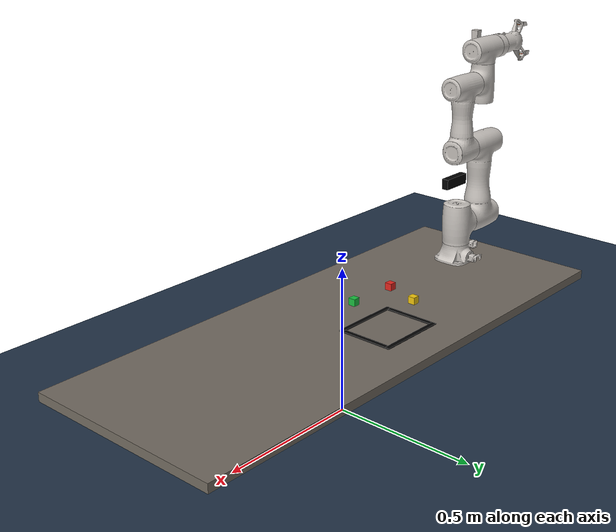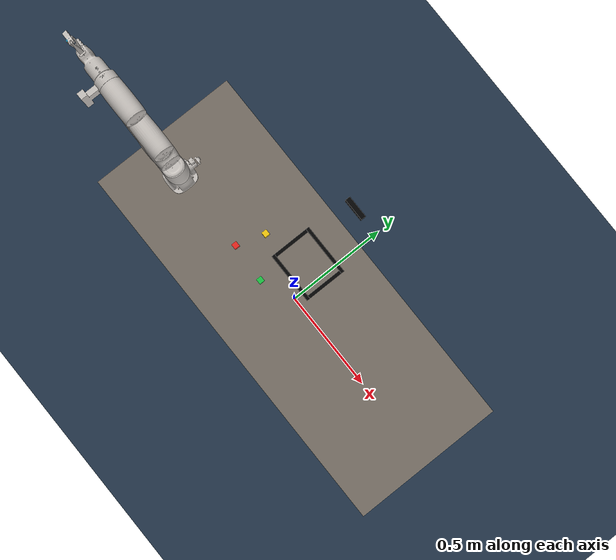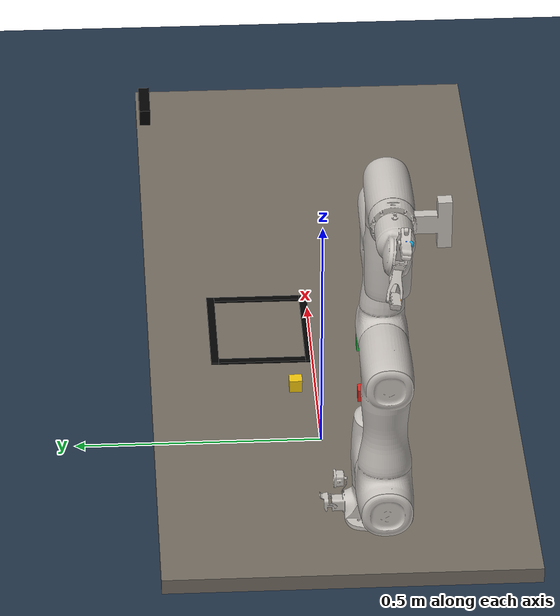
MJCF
<?xml version='1.0' encoding='utf-8'?>
<mujoco model="更新的夹爪（一半旋转）v1.0.SLDASM">
  <compiler angle="radian" autolimits="true" />
  <default>
    <default class="visual_only">
      <geom contype="0" conaffinity="0" group="2" />
    </default>
    <default class="no_visual_collision">
      <geom contype="1" conaffinity="1" group="3" rgba="0 1 0 0" friction="1.0 0.05 0.005" condim="4" margin="0.001" solref="0.004 1" solimp="0.95 0.99 0.001" />
    </default>
    <default class="visual_collision">
      <geom contype="1" conaffinity="1" group="2" />
    </default>
  </default>
  <asset>
    <mesh name="base_link" content_type="model/stl" file="meshes/base_link.STL" />
    <mesh name="Link1" content_type="model/stl" file="meshes/Link1.STL" />
    <mesh name="Link2" content_type="model/stl" file="meshes/Link2.STL" />
    <mesh name="Link3" content_type="model/stl" file="meshes/Link3.STL" />
    <mesh name="Link4" content_type="model/stl" file="meshes/Link4.STL" />
    <mesh name="Link5" content_type="model/stl" file="meshes/Link5.STL" />
    <mesh name="Link6" content_type="model/stl" file="meshes/Link6.STL" />
    <mesh name="gripper_base" content_type="model/stl" file="meshes/gripper_base.STL" />
    <mesh name="Left_Link1" content_type="model/stl" file="meshes/Left_Link1.STL" />
    <mesh name="Left_static1" content_type="model/stl" file="meshes/Left_static1.STL" />
    <mesh name="Left_link2" content_type="model/stl" file="meshes/Left_link2.STL" />
    <mesh name="Right_Link1" content_type="model/stl" file="meshes/Right_Link1.STL" />
    <mesh name="Right_static1" content_type="model/stl" file="meshes/Right_static1.STL" />
    <mesh name="Right_Link2" content_type="model/stl" file="meshes/Right_Link2.STL" />
    <texture name="blue_checker_floor" type="2d" builtin="checker" rgb1="0.18 0.28 0.38" rgb2="0.08 0.12 0.18" width="512" height="512" />
    <material name="blue_checker_floor_mat" texture="blue_checker_floor" texrepeat="40 40" reflectance="0.1" />
  </asset>
  <worldbody>
    <body name="cr3_base_mount" pos="-0.7 -0.06 0.31">
      <geom type="mesh" rgba="0.776471 0.756863 0.737255 1" mesh="base_link" class="visual_only" contype="0" conaffinity="0" group="2" />
      <body name="Link1" pos="7.69363e-05 0.000302534 0.065">
        <inertial pos="-0.00394441 3.66734e-05 0.073444" quat="0.947437 -0.00273951 -0.319921 0.00265176" mass="10.0956" diaginertia="0.0167604 0.0155946 0.0126575" />
        <joint name="J1" pos="0 0 0" axis="0 0 1" range="-6.28319 6.28319" actuatorfrcrange="-1800 1800" damping="12" frictionloss="1" ref="-1.5707963267948966" />
        <geom type="mesh" rgba="0.776471 0.756863 0.737255 1" mesh="Link1" class="visual_only" contype="0" conaffinity="0" group="2" />
        <body name="Link2" pos="-0.0590003 0 0.0698">
          <inertial pos="-0.0741752 -1.41283e-05 0.129233" quat="0.706494 -0.0232625 -0.02388 0.706933" mass="26.1839" diaginertia="0.048688 0.0445674 0.0346495" />
          <joint name="J2" pos="0 0 0" axis="-1 0 0" range="-3.22092 3.06227" actuatorfrcrange="-1800 1800" damping="16" frictionloss="1.2" ref="-0.07933394114940226" />
          <geom type="mesh" rgba="0.776471 0.756863 0.737255 1" mesh="Link2" class="visual_only" contype="0" conaffinity="0" group="2" />
          <body name="Link3" pos="-0.0036 0 0.274008">
            <inertial pos="0.0522018 1.21074e-06 0.121124" quat="0.706801 -0.0224151 -0.0224228 0.706702" mass="16.8666" diaginertia="0.156932 0.153574 0.0191618" />
            <joint name="J3" pos="0 0 0" axis="-1 0 0" range="-4.83456 1.44862" actuatorfrcrange="-1400 1400" damping="14" frictionloss="1" ref="-1.6929693744344996" />
            <geom type="mesh" rgba="0.776471 0.756863 0.737255 1" mesh="Link3" class="visual_only" contype="0" conaffinity="0" group="2" />
            <body name="Link4" pos="-0.0167 0 0.229991">
              <inertial pos="-0.0461257 1.2653e-06 -0.0034516" quat="0.973292 -8.16792e-06 -0.22957 4.69545e-05" mass="6.48534" diaginertia="0.00816577 0.00772983 0.00559607" />
              <joint name="J4" pos="0 0 0" axis="1 0 0" range="-3.00197 3.28122" actuatorfrcrange="-900 900" damping="8" frictionloss="0.6" ref="0.13962634015954636" />
              <geom type="mesh" rgba="0.776471 0.756863 0.737255 1" mesh="Link4" class="visual_only" contype="0" conaffinity="0" group="2" />
              <body name="Link5" pos="-0.0489999 0 0.0670001">
                <inertial pos="0.00333134 -2.03015e-07 0.0461311" quat="3.79243e-05 0.849701 3.47137e-05 0.527265" mass="6.49626" diaginertia="0.00819877 0.00776563 0.00560717" />
                <joint name="J5" pos="0 0 0" axis="0 0 -1" range="-4.72984 1.55334" actuatorfrcrange="-600 600" damping="5" frictionloss="0.4" ref="-1.5882496193148399" />
                <geom type="mesh" rgba="0.776471 0.756863 0.737255 1" mesh="Link5" class="visual_only" contype="0" conaffinity="0" group="2" />
                <body name="Link6" pos="-0.0673001 0 0.0488012">
                  <inertial pos="-0.0350774 -0.0623253 -0.00384368" quat="0.712399 0.573812 0.236016 0.327909" mass="1.35171" diaginertia="0.00171951 0.00146417 0.00086987" />
                  <joint name="J6" pos="0 0 0" axis="1 0 0" range="-6.28319 6.28319" actuatorfrcrange="-400 400" damping="4" frictionloss="0.3" ref="-4.834562028024293" />
                  <geom type="mesh" rgba="0.776471 0.756863 0.737255 1" mesh="Link6" class="visual_only" contype="0" conaffinity="0" group="2" />
                  <geom pos="-0.0477034 -1.4245e-05 8.99393e-05" quat="1 0 0 0" type="mesh" rgba="0.776471 0.756863 0.737255 1" mesh="gripper_base" class="visual_only" contype="0" conaffinity="0" group="2" />
                  <body name="Left_Link1" pos="-0.1296 0.00270665 0.0257403">
                    <inertial pos="-0.00700744 -0.0090106 0.00739792" quat="0.509039 -0.108563 -0.109622 0.846803" mass="0.0844596" diaginertia="3.23757e-05 3.0374e-05 6.0291e-06" />
                    <joint name="Left_joint1" pos="0 0 0" axis="0 -0.987688 -0.156434" range="-1.03 1.03" actuatorfrcrange="-12 12" damping="0.9" frictionloss="0.035" />
                    <geom type="mesh" rgba="0.776471 0.756863 0.737255 1" mesh="Left_Link1" class="visual_only" contype="0" conaffinity="0" group="2" />
                    <body name="Left_static1" pos="-0.0269314 -0.0137584 0.0440375">
                      <inertial pos="-0.0267318 0.00222482 -0.0141391" quat="-0.049582 0.630042 -0.0608023 0.772588" mass="0.0817983" diaginertia="1.76349e-05 1.63651e-05 2.98451e-06" />
                      <joint name="Left_static1_joint" pos="0 0 0" axis="0 -0.987688 -0.156434" range="-1.03 1.03" actuatorfrcrange="-12 12" damping="0.9" frictionloss="0.035" />
                      <geom type="mesh" rgba="0.776471 0.756863 0.737255 1" mesh="Left_static1" class="visual_only" contype="0" conaffinity="0" group="2" />
                      <geom name="left_static1_finger_collision" type="box" class="no_visual_collision" rgba="0 1 0 0" group="3" contype="1" conaffinity="1" friction="2.0 0.08 0.008" condim="4" margin="0.001" solref="0.004 1" solimp="0.95 0.99 0.001" pos="-0.035 0 -0.045" size="0.03 0.018 0.006" />
                      <site name="left_static_pin_site" type="sphere" pos="-0.02 0.00211 -0.01333" size="0.006" rgba="0.05 0.4 1 1" group="2" />
                      <site name="left_static_axis_site" type="sphere" pos="-0.02 -0.0057915067 -0.014581476" size="0.006" rgba="0.05 0.75 1 1" group="2" />
                    </body>
                    <geom name="Left_Link1_collision" type="capsule" class="no_visual_collision" rgba="0 1 0 0" group="3" contype="1" conaffinity="1" friction="1.0 0.05 0.005" condim="4" margin="0.001" solref="0.004 1" solimp="0.95 0.99 0.001" fromto="0 0 0 -0.023 -0.010 0.036" size="0.007" />
                  </body>
                  <body name="Left_link2" pos="-0.1496 0.00481852 0.0124065">
                    <inertial pos="-0.01073 -0.00946276 0.0169167" quat="0.961713 0.0756818 -0.26259 -0.0206679" mass="0.0467786" diaginertia="1.52576e-05 1.27468e-05 2.93383e-06" />
                    <joint name="Left_joint2" pos="0 0 0" axis="0 -0.987688 -0.156434" range="-1.03 1.03" actuatorfrcrange="-12 12" damping="0.9" frictionloss="0.035" />
                    <geom type="mesh" rgba="0.776471 0.756863 0.737255 1" mesh="Left_link2" class="visual_only" contype="0" conaffinity="0" group="2" />
                    <site name="left_link2_pin_site" type="sphere" pos="-0.02693 -0.01376 0.04404" size="0.006" rgba="1 0.15 0.05 1" group="2" />
                    <site name="left_link2_axis_site" type="sphere" pos="-0.02693 -0.021661507 0.042788524" size="0.006" rgba="1 0.55 0.05 1" group="2" />
                  </body>
                  <body name="Right_Link1" pos="-0.1296 0.0105284 -0.0236441">
                    <inertial pos="-0.00700744 -0.00422443 -0.00949414" quat="0.846803 0.109622 0.108563 0.509039" mass="0.0844596" diaginertia="3.23757e-05 3.0374e-05 6.0291e-06" />
                    <joint name="Right_joint" pos="0 0 0" axis="0 -0.987688 -0.156434" range="-1.03 1.03" actuatorfrcrange="-12 12" damping="0.9" frictionloss="0.035" />
                    <geom type="mesh" rgba="0.776471 0.756863 0.737255 1" mesh="Right_Link1" class="visual_only" contype="0" conaffinity="0" group="2" />
                    <body name="Right_static1" pos="-0.0269314 0.000523342 -0.0461337">
                      <inertial pos="-0.0267318 -0.00222483 0.0141391" quat="-0.0608025 0.772588 -0.0495822 0.630042" mass="0.0817983" diaginertia="1.76349e-05 1.63651e-05 2.98451e-06" />
                      <joint name="Right_static1_joint" pos="0 0 0" axis="0 0.987688 0.156434" range="-1.03 1.03" actuatorfrcrange="-12 12" damping="0.9" frictionloss="0.035" />
                      <geom type="mesh" rgba="0.776471 0.756863 0.737255 1" mesh="Right_static1" class="visual_only" contype="0" conaffinity="0" group="2" />
                      <geom name="right_static1_finger_collision" type="box" class="no_visual_collision" rgba="0 1 0 0" group="3" contype="1" conaffinity="1" friction="2.0 0.08 0.008" condim="4" margin="0.001" solref="0.004 1" solimp="0.95 0.99 0.001" pos="-0.035 0 0.045" size="0.03 0.018 0.006" />
                      <site name="right_static_pin_site" type="sphere" pos="-0.02 -0.00211 0.01333" size="0.006" rgba="0.05 0.4 1 1" group="2" />
                      <site name="right_static_axis_site" type="sphere" pos="-0.02 -0.010011507 0.012078524" size="0.006" rgba="0.05 0.75 1 1" group="2" />
                    </body>
                    <geom name="Right_Link1_collision" type="capsule" class="no_visual_collision" rgba="0 1 0 0" group="3" contype="1" conaffinity="1" friction="1.0 0.05 0.005" condim="4" margin="0.001" solref="0.004 1" solimp="0.95 0.99 0.001" fromto="0 0 0 -0.023 0.001 -0.036" size="0.007" />
                  </body>
                  <body name="Right_Link2" pos="-0.1496 0.00841651 -0.0103103">
                    <inertial pos="-0.01073 -0.00377226 -0.0190129" quat="0.961713 0.0756818 0.26259 0.0206679" mass="0.0467786" diaginertia="1.52576e-05 1.27468e-05 2.93383e-06" />
                    <joint name="Right_joint2" pos="0 0 0" axis="0 -0.987688 -0.156434" range="-1.03 1.03" actuatorfrcrange="-12 12" damping="0.9" frictionloss="0.035" />
                    <geom type="mesh" rgba="0.776471 0.756863 0.737255 1" mesh="Right_Link2" class="visual_only" contype="0" conaffinity="0" group="2" />
                    <site name="right_link2_pin_site" type="sphere" pos="-0.02693 0.00052 -0.04613" size="0.006" rgba="1 0.15 0.05 1" group="2" />
                    <site name="right_link2_axis_site" type="sphere" pos="-0.02693 -0.0073815067 -0.047381476" size="0.006" rgba="1 0.55 0.05 1" group="2" />
                  </body>
                  <geom name="Link6_or_gripper_base_collision" type="box" class="no_visual_collision" rgba="0 1 0 0" group="3" contype="1" conaffinity="1" friction="1.0 0.05 0.005" condim="4" margin="0.001" solref="0.004 1" solimp="0.95 0.99 0.001" pos="-0.110 0.004 0" size="0.038 0.035 0.038" />
                  <camera name="wrist" pos="-0.045 -0.09 0" xyaxes="0 1 0 0 0 1" fovy="70" />
                </body>
              </body>
            </body>
          </body>
        </body>
      </body>
      <geom name="base_collision" class="visual_only" type="cylinder" pos="0 0 0.035" size="0.09 0.04" rgba="0.2 0.2 0.2 0.15" group="3" contype="0" conaffinity="0" />
    </body>
    <light name="top_light" pos="0 -0.8 1.8" dir="0 0.4 -1" />
    <geom name="floor" type="plane" size="20 20 0.02" material="blue_checker_floor_mat" contype="1" conaffinity="1" friction="1.0 0.05 0.005" />
    <body name="table" pos="0.0 0.0 0.295">
      <geom name="table_top" class="visual_only" type="box" size="0.9 0.35 0.015" rgba="0.45 0.42 0.38 1" group="2" contype="0" conaffinity="0" />
      <geom name="table_top_collision" type="box" class="no_visual_collision" rgba="0 1 0 0" group="3" contype="1" conaffinity="1" friction="1.0 0.05 0.005" condim="4" margin="0.001" solref="0.002 1" solimp="0.98 0.995 0.0005" size="0.9 0.35 0.015" />
      <geom name="table_edge_collision_xmin" type="box" class="no_visual_collision" rgba="0 1 0 0" group="3" contype="1" conaffinity="1" friction="1.0 0.05 0.005" condim="4" margin="0.001" solref="0.002 1" solimp="0.98 0.995 0.0005" pos="-0.912 0 0.07" size="0.012 0.35 0.055" />
      <geom name="table_edge_collision_xmax" type="box" class="no_visual_collision" rgba="0 1 0 0" group="3" contype="1" conaffinity="1" friction="1.0 0.05 0.005" condim="4" margin="0.001" solref="0.002 1" solimp="0.98 0.995 0.0005" pos="0.912 0 0.07" size="0.012 0.35 0.055" />
      <geom name="table_edge_collision_ymin" type="box" class="no_visual_collision" rgba="0 1 0 0" group="3" contype="1" conaffinity="1" friction="1.0 0.05 0.005" condim="4" margin="0.001" solref="0.002 1" solimp="0.98 0.995 0.0005" pos="0 -0.362 0.07" size="0.9 0.012 0.055" />
      <geom name="table_edge_collision_ymax" type="box" class="no_visual_collision" rgba="0 1 0 0" group="3" contype="1" conaffinity="1" friction="1.0 0.05 0.005" condim="4" margin="0.001" solref="0.002 1" solimp="0.98 0.995 0.0005" pos="0 0.362 0.07" size="0.9 0.012 0.055" />
    </body>
    <body name="target" pos="-0.07000000000000006 0.13 0.314">
      <geom name="target_bottom" class="visual_only" type="box" pos="0 -0.0925 0" size="0.12 0.0075 0.002" rgba="0.01 0.01 0.01 1" group="2" contype="0" conaffinity="0" />
      <geom name="target_top" class="visual_only" type="box" pos="0 0.0925 0" size="0.12 0.0075 0.002" rgba="0.01 0.01 0.01 1" group="2" contype="0" conaffinity="0" />
      <geom name="target_left" class="visual_only" type="box" pos="-0.11249999999999999 0 0" size="0.0075 0.085 0.002" rgba="0.01 0.01 0.01 1" group="2" contype="0" conaffinity="0" />
      <geom name="target_right" class="visual_only" type="box" pos="0.11249999999999999 0 0" size="0.0075 0.085 0.002" rgba="0.01 0.01 0.01 1" group="2" contype="0" conaffinity="0" />
    </body>
    <body name="cube" pos="-0.32000000000000006 -0.06 0.3225">
      <joint name="cube_free" type="free" limited="false" />
      <geom name="cube" class="visual_only" type="box" size="0.0125 0.0125 0.0125" rgba="0.9 0.15 0.12 1" group="2" contype="0" conaffinity="0" />
      <geom name="cube_collision" class="no_visual_collision" type="box" size="0.0125 0.0125 0.0125" mass="0.008" rgba="0 1 0 0" group="3" contype="1" conaffinity="1" friction="2.0 0.08 0.008" condim="4" margin="0.001" solref="0.002 1" solimp="0.98 0.995 0.0005" />
    </body>
    <body name="yellow_cube" pos="-0.28 0.07 0.3225">
      <joint name="yellow_cube_free" type="free" limited="false" />
      <geom name="yellow_cube" class="visual_only" type="box" size="0.0125 0.0125 0.0125" rgba="0.95 0.78 0.05 1" group="2" contype="0" conaffinity="0" />
      <geom name="yellow_cube_collision" class="no_visual_collision" type="box" size="0.0125 0.0125 0.0125" mass="0.008" rgba="0 1 0 0" group="3" contype="1" conaffinity="1" friction="2.0 0.08 0.008" condim="4" margin="0.001" solref="0.002 1" solimp="0.98 0.995 0.0005" />
    </body>
    <body name="green_cube" pos="-0.14 -0.06999999999999995 0.3225">
      <joint name="green_cube_free" type="free" limited="false" />
      <geom name="green_cube" class="visual_only" type="box" size="0.0125 0.0125 0.0125" rgba="0.1 0.75 0.25 1" group="2" contype="0" conaffinity="0" />
      <geom name="green_cube_collision" class="no_visual_collision" type="box" size="0.0125 0.0125 0.0125" mass="0.008" rgba="0 1 0 0" group="3" contype="1" conaffinity="1" friction="2.0 0.08 0.008" condim="4" margin="0.001" solref="0.002 1" solimp="0.98 0.995 0.0005" />
    </body>
    <body name="front_camera_body" pos="-0.09 0.35 0.84">
      <geom name="front_camera_body" class="visual_only" type="box" size="0.045 0.01 0.015" rgba="0.01 0.01 0.01 1" group="2" contype="0" conaffinity="0" />
      <camera name="front" pos="0 0 0" xyaxes="-0.99996 0.0087257 0 -0.0079557 -0.91172 0.41074" fovy="52" />
    </body>
  </worldbody>
  <option timestep="0.001" gravity="0 0 -9.81" integrator="implicitfast" solver="Newton" iterations="150" tolerance="1e-10" />
  <visual>
    <global offwidth="1280" offheight="720" />
    <headlight ambient="0.45 0.45 0.45" diffuse="0.85 0.85 0.85" specular="0.2 0.2 0.2" />
  </visual>
  <size njmax="2000" nconmax="500" />
  <equality>
    <connect name="left_link2_static_connect" site1="left_link2_pin_site" site2="left_static_pin_site" solref="0.002 1" solimp="0.99 0.999 0.0001" />
    <connect name="left_link2_static_axis_connect" site1="left_link2_axis_site" site2="left_static_axis_site" solref="0.002 1" solimp="0.99 0.999 0.0001" />
    <connect name="right_link2_static_connect" site1="right_link2_pin_site" site2="right_static_pin_site" solref="0.002 1" solimp="0.99 0.999 0.0001" />
    <connect name="right_link2_static_axis_connect" site1="right_link2_axis_site" site2="right_static_axis_site" solref="0.002 1" solimp="0.99 0.999 0.0001" />
  </equality>
  <actuator>
    <position name="J1_pos" joint="J1" kp="1400" kv="140" ctrlrange="-6.283185307179586 6.283185307179586" />
    <position name="J2_pos" joint="J2" kp="1800" kv="180" ctrlrange="-3.2209178680929353 3.0622674390866513" />
    <position name="J3_pos" joint="J3" kp="1500" kv="150" ctrlrange="-4.834562028024293 1.4486232791552935" />
    <position name="J4_pos" joint="J4" kp="800" kv="80" ctrlrange="-3.001966313430247 3.2812189937493397" />
    <position name="J5_pos" joint="J5" kp="550" kv="55" ctrlrange="-4.729842272904633 1.5533430342749532" />
    <position name="J6_pos" joint="J6" kp="400" kv="40" ctrlrange="-6.283185307179586 6.283185307179586" />
    <position name="Left_joint1_pos" joint="Left_joint1" kp="120" kv="12" ctrlrange="0.0 1.03" />
    <position name="Right_joint_pos" joint="Right_joint" kp="120" kv="12" ctrlrange="-1.03 0.0" />
  </actuator>
</mujoco>
